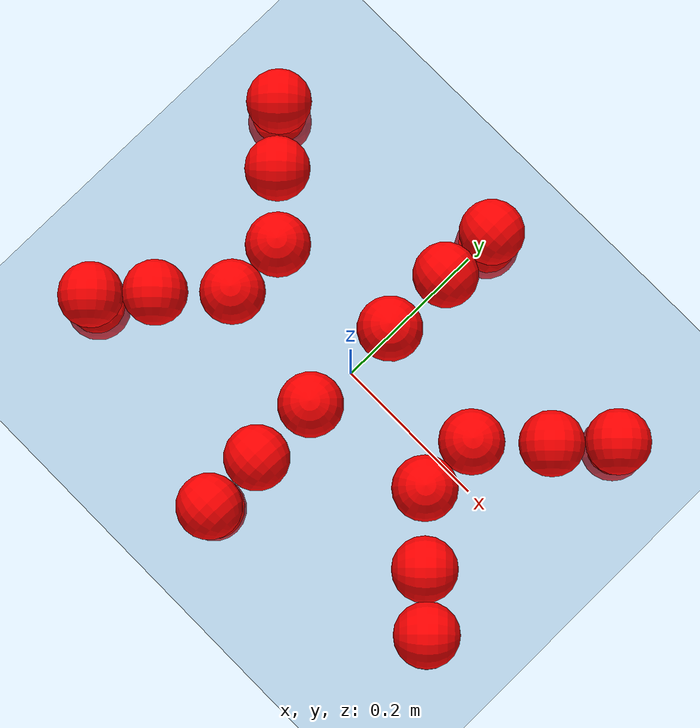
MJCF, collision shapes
<mujoco model="Golem">
  <compiler angle="radian" assetdir="assets" balanceinertia="true" inertiafromgeom="false"/>

  <option timestep="0.005" density="1.2" viscosity="2e-05"/>

  <size nkey="1"/>

  <visual>
    <quality shadowsize="8192"/>
    <map shadowclip="0.5"/>
  </visual>

  <default>
    <default class="/">
      <joint armature="0.01" damping="0.01" frictionloss="0.01"/>
      <geom contype="0" conaffinity="0" group="1" solref="-1000 -80"/>
      <site size="0.01 0.005 0.005" group="5"/>
      <general forcelimited="true" biastype="affine" gainprm="25" biasprm="0 -25 -0.5"/>
      <default class="visual">
        <geom type="mesh" group="2"/>
      </default>
      <default class="collision">
        <geom group="3"/>
      </default>
      <default class="foot">
        <geom size="0.01 0 0" condim="6" group="4" priority="1" solimp="0.015 1 0.01"/>
      </default>
      <default class="reward_collision_sphere">
        <geom group="5" rgba="1 0 0 1"/>
      </default>
    </default>
  </default>

  <asset>
    <texture type="skybox" colorspace="auto" name="//unnamed_texture_0" builtin="gradient" rgb1="0.95 0.95 0.95" rgb2="0.95 0.95 0.95" width="100" height="600"/>
    <texture type="2d" colorspace="auto" name="texplane" builtin="checker" rgb1="0.345 0.575 0.748" rgb2="0.345 0.575 0.748" markrgb="1 1 1" width="512" height="512"/>
    <material name="MatPlane" class="/" texture="texplane" texuniform="true" texrepeat="2 2" specular="0.9"/>
    <mesh name="body" class="/" file="body.stl" scale="0.001 0.001 0.001"/>
    <mesh name="coxa" class="/" file="coxa.stl" scale="0.001 0.001 0.001"/>
    <mesh name="femur" class="/" file="femur.stl" scale="0.001 0.001 0.001"/>
    <mesh name="tibia" class="/" file="tibia.stl" scale="0.001 0.001 0.001"/>
    <mesh name="tarsus" class="/" file="tarsus.stl" scale="0.001 0.001 0.001"/>
  </asset>

  <worldbody>
    <geom name="floor" class="/" size="100 100 0.125" type="plane" group="0" material="MatPlane"/>
    <light name="toplight_shadow" class="/" pos="0 0 5" dir="0.0990148 0.0990148 -0.990148" type="directional" ambient="0.04 0.04 0.04" diffuse="0.55 0.55 0.55" specular="0.12 0.12 0.12"/>
    <light name="toplight_fill" class="/" pos="0 0 5" dir="0.0990148 0.0990148 -0.990148" type="directional" castshadow="false" ambient="0.04 0.04 0.04" diffuse="0.3 0.3 0.3" specular="0.08 0.08 0.08"/>
    <body name="trunk" pos="-0.000953658 -0.000228931 -0.00259394" quat="1 -7.524e-05 -9.92731e-05 0.000200642">
      <inertial pos="0.00185047 -0.000295052 -0.000340202" quat="0.999924 -0.00610411 -0.010054 0.00366478" mass="3.62125" diaginertia="0.0112333 0.00211374 0.0239529"/>
      <joint name="//unnamed_joint_0" type="free"/>
      <geom name="//unnamed_geom_1" class="/" pos="0 0 0.076196" quat="1 0 0 0" type="mesh" rgba="0.9 0.9 0.9 1" mesh="body"/>
      <site name="imu" class="/" pos="0.132309 0.00301437 0.11578" size="0.00983189"/>
      <camera name="track" class="/" pos="0 -1.45754 0" quat="0.707107 0.707107 0 0" mode="trackcom"/>
      <camera name="ego_camera" class="/" pos="0.13393 0 0.119056" quat="-0.5 -0.5 0.5 0.5"/>
      <body name="coxa_RR" pos="-0.182007 -0.0593079 0.0751656" quat="0.382768 0.000162404 0.000279678 -0.923844">
        <inertial pos="-0.000791071 -0.00260354 -6.24888e-06" quat="0.999987 0.00353332 -0.00123519 0.00360034" mass="0.184173" diaginertia="0.0109526 0.00206799 0.0231684"/>
        <joint name="coxa_joint_RR" class="/" pos="0 0 0" axis="-0.00469902 0.00446975 -0.999979" stiffness="0.00140896" range="-3.14374 3.09438" armature="0.00904332" damping="0.00765487" frictionloss="0.00939893"/>
        <geom name="//unnamed_geom_2" class="/" type="mesh" rgba="0.2 0.2 0.2 1" mesh="coxa"/>
        <geom name="//unnamed_geom_3" class="reward_collision_sphere" size="0.0393276" pos="-0.030907 0 0"/>
        <body name="femur_RR" pos="0.0608231 0.000950934 -0.00188329" quat="0.500455 -0.499742 0.500031 0.499771">
          <inertial pos="0.00106059 0.00146205 -0.00149088" quat="1 -0.000383571 0.000489954 0.000659805" mass="0.18989" diaginertia="0.0116392 0.00207869 0.0240519"/>
          <joint name="femur_joint_RR" class="/" pos="0 0 0" axis="-0.000214279 0.000106649 -1" range="-3.15651 3.08413" armature="0.00868606" damping="0" frictionloss="0.0110178"/>
          <geom name="//unnamed_geom_4" class="/" type="mesh" rgba="0.9 0.9 0.9 1" mesh="femur"/>
          <geom name="//unnamed_geom_5" class="reward_collision_sphere" size="0.0393276"/>
          <body name="tibia_RR" pos="0.00082537 -0.076234 0.0031038" quat="3.9398e-06 1 0.00011463 -0.000569997">
            <inertial pos="-0.00270242 -0.0017727 -0.000124253" quat="0.999917 0.00579682 -0.00919511 0.00684593" mass="0.1901" diaginertia="0.0113745 0.00209388 0.024525"/>
            <joint name="tibia_joint_RR" class="/" pos="0 0 0" axis="0.00404586 0.00282539 0.999988" stiffness="0.00122109" range="-3.1932 3.1307" armature="0.00870183" damping="0" frictionloss="0.00951417"/>
            <geom name="//unnamed_geom_6" class="/" type="mesh" rgba="0.2 0.2 0.2 1" mesh="tibia"/>
            <geom name="//unnamed_geom_7" class="reward_collision_sphere" size="0.0393276"/>
            <body name="tarsus_RR" pos="0.0895155 -3.4926e-05 -0.00127096" quat="1 -0.000167167 -0.000311483 -0.000171263">
              <inertial pos="0.060109 0.003078 -0.00233542" quat="0.500074 0.499261 0.500325 0.50034" mass="0.188585" diaginertia="0.0113711 0.00206235 0.0235166"/>
              <joint name="tarsus_joint_RR" class="/" pos="0 0 0" axis="-0.00346037 -0.00239682 0.999991" range="-3.16074 3.1437" armature="0.0111901" damping="0.00374893" frictionloss="0.011137"/>
              <geom name="//unnamed_geom_8" class="/" type="mesh" rgba="0.9 0.9 0.9 1" mesh="tarsus"/>
              <geom name="foot_1" class="foot" size="0.00883628" pos="0.115386 0 0" quat="0 -0.707107 0 0.707107"/>
              <geom name="//unnamed_geom_10" class="reward_collision_sphere" size="0.0393276"/>
              <geom name="//unnamed_geom_11" class="reward_collision_sphere" size="0.0147478" pos="0.11075 0 0"/>
              <site name="foot_1" class="foot" pos="0.115386 0 0" quat="0 -0.707107 0 0.707107" size="0.00983189"/>
            </body>
          </body>
        </body>
      </body>
      <body name="coxa_RM" pos="0.000302992 -0.0966127 0.0743456" quat="0.707036 0.000396915 0.00119764 -0.707176">
        <inertial pos="-0.00270455 -8.811e-05 -0.000529918" quat="0.999988 0.00152186 0.00448647 -0.00116233" mass="0.185989" diaginertia="0.011432 0.00201038 0.0239924"/>
        <joint name="coxa_joint_RM" class="/" pos="0 0 0" axis="0.00131708 -0.000529955 -0.999999" range="-3.18844 3.13898" armature="0.00984706" damping="0.00854079" frictionloss="0.00990919"/>
        <geom name="//unnamed_geom_12" class="/" type="mesh" rgba="0.2 0.2 0.2 1" mesh="coxa"/>
        <geom name="//unnamed_geom_13" class="reward_collision_sphere" size="0.0393276" pos="-0.030907 0 0"/>
        <body name="femur_RM" pos="0.0577774 0.000541644 0.00171002" quat="0.50078 -0.500288 0.500012 0.498917">
          <inertial pos="0.000805703 -0.000627654 0.00036143" quat="0.999903 -0.0022862 -0.0135927 -0.00195602" mass="0.196166" diaginertia="0.0119652 0.00205488 0.0248471"/>
          <joint name="femur_joint_RM" class="/" pos="0 0 0" axis="-3.25989e-05 -5.08059e-05 -1" range="-3.15085 3.13857" armature="0.00946452" damping="0.00719368" frictionloss="0.00964315"/>
          <geom name="//unnamed_geom_14" class="/" type="mesh" rgba="0.9 0.9 0.9 1" mesh="femur"/>
          <geom name="//unnamed_geom_15" class="reward_collision_sphere" size="0.0393276"/>
          <body name="tibia_RM" pos="-0.00211151 -0.0791898 0.00207418" quat="-0.00023551 1 0.000456673 -0.00034126">
            <inertial pos="5.60391e-05 0.00210306 0.000299913" quat="0.999988 0.00280016 -0.00355318 -0.00175211" mass="0.195962" diaginertia="0.0120536 0.00212593 0.0252092"/>
            <joint name="tibia_joint_RM" class="/" pos="0 0 0" axis="0.00685841 0.00443192 0.999967" stiffness="0.000663037" range="-3.0934 3.09611" armature="0.0104338" damping="0.000404772" frictionloss="0.00982496"/>
            <geom name="//unnamed_geom_16" class="/" type="mesh" rgba="0.2 0.2 0.2 1" mesh="tibia"/>
            <geom name="//unnamed_geom_17" class="reward_collision_sphere" size="0.0393276"/>
            <body name="tarsus_RM" pos="0.0877541 -0.00276343 0.00216821" quat="0.999999 -0.00091355 -0.000319101 -0.000787799">
              <inertial pos="0.0624155 0.00283878 0.000347239" quat="0.499922 0.500065 0.500013 0.5" mass="0.178654" diaginertia="0.0112258 0.00196743 0.0228497"/>
              <joint name="tarsus_joint_RM" class="/" pos="0 0 0" axis="-0.00176067 0.00821691 0.999965" stiffness="0.000811768" range="-3.1513 3.15921" armature="0.0106706" damping="0.00284882" frictionloss="0.00994132"/>
              <geom name="//unnamed_geom_18" class="/" type="mesh" rgba="0.9 0.9 0.9 1" mesh="tarsus"/>
              <geom name="foot_2" class="foot" size="0.00999595" pos="0.115386 0 0" quat="0 -0.707107 0 0.707107"/>
              <geom name="//unnamed_geom_20" class="reward_collision_sphere" size="0.0393276"/>
              <geom name="//unnamed_geom_21" class="reward_collision_sphere" size="0.0147478" pos="0.11075 0 0"/>
              <site name="foot_2" class="foot" pos="0.115386 0 0" quat="0 -0.707107 0 0.707107" size="0.00983189"/>
            </body>
          </body>
        </body>
      </body>
      <body name="coxa_RF" pos="0.186005 -0.061583 0.075391" quat="0.923829 0.000197223 -0.00113315 -0.382803">
        <inertial pos="-0.00280835 -0.000968259 0.00284113" quat="0.999963 0.00107035 0.0066793 0.00523951" mass="0.194441" diaginertia="0.0116048 0.00205514 0.0238814"/>
        <joint name="coxa_joint_RF" class="/" pos="0 0 0" axis="0.00404891 -0.000936999 -0.999991" range="-3.1763 3.14189" armature="0.00840471" damping="0.0153208" frictionloss="0.0108278"/>
        <geom name="//unnamed_geom_22" class="/" type="mesh" rgba="0.2 0.2 0.2 1" mesh="coxa"/>
        <geom name="//unnamed_geom_23" class="reward_collision_sphere" size="0.0393276" pos="-0.030907 0 0"/>
        <body name="femur_RF" pos="0.0634583 0.000177213 -0.0024772" quat="0.500109 -0.4998 0.501024 0.499065">
          <inertial pos="0.00129064 -0.00116174 -0.000759624" quat="0.99999 -0.00322146 0.00183682 0.00262573" mass="0.178142" diaginertia="0.0116445 0.00200382 0.0227076"/>
          <joint name="femur_joint_RF" class="/" pos="0 0 0" axis="0.000397825 0.000107291 -1" range="-3.13165 3.08433" armature="0.00883146" damping="0" frictionloss="0.00863617"/>
          <geom name="//unnamed_geom_24" class="/" type="mesh" rgba="0.9 0.9 0.9 1" mesh="femur"/>
          <geom name="//unnamed_geom_25" class="reward_collision_sphere" size="0.0393276"/>
          <body name="tibia_RF" pos="-0.00100907 -0.0759198 0.00257512" quat="5.57096e-05 1 0.000120249 6.14859e-05">
            <inertial pos="-0.00247125 0.000877386 -0.000163915" quat="1 -6.20868e-05 2.10171e-05 2.05893e-06" mass="0.183647" diaginertia="0.0109221 0.00200054 0.0232393"/>
            <joint name="tibia_joint_RF" class="/" pos="0 0 0" axis="0.00229381 0.00921342 0.999955" range="-3.09963 3.13674" armature="0.00985379" damping="0" frictionloss="0.0107199"/>
            <geom name="//unnamed_geom_26" class="/" type="mesh" rgba="0.2 0.2 0.2 1" mesh="tibia"/>
            <geom name="//unnamed_geom_27" class="reward_collision_sphere" size="0.0393276"/>
            <body name="tarsus_RF" pos="0.0894135 0.000181473 -0.00276486" quat="0.999999 0.0010531 0.00058986 -4.60182e-05">
              <inertial pos="0.0592795 -0.00178327 -0.000427188" quat="0.492789 0.502769 0.496807 0.507509" mass="0.184764" diaginertia="0.0114066 0.00208383 0.0227903"/>
              <joint name="tarsus_joint_RF" class="/" pos="0 0 0" axis="-0.00681584 -0.00621577 0.999957" range="-3.12532 3.13202" armature="0.00854992" damping="0" frictionloss="0.00846559"/>
              <geom name="//unnamed_geom_28" class="/" type="mesh" rgba="0.9 0.9 0.9 1" mesh="tarsus"/>
              <geom name="foot_3" class="foot" size="0.0098905" pos="0.115386 0 0" quat="0 -0.707107 0 0.707107"/>
              <geom name="//unnamed_geom_30" class="reward_collision_sphere" size="0.0393276"/>
              <geom name="//unnamed_geom_31" class="reward_collision_sphere" size="0.0147478" pos="0.11075 0 0"/>
              <site name="foot_3" class="foot" pos="0.115386 0 0" quat="0 -0.707107 0 0.707107" size="0.00983189"/>
            </body>
          </body>
        </body>
      </body>
      <body name="coxa_LR" pos="-0.185017 0.0623171 0.0736938" quat="0.382385 -3.22461e-05 -3.47168e-05 0.924003">
        <inertial pos="0.00051367 -0.000572757 0.000743686" quat="0.999913 0.00848666 -0.00974809 -0.00280783" mass="0.189601" diaginertia="0.0116488 0.00212243 0.0239086"/>
        <joint name="coxa_joint_LR" class="/" pos="0 0 0" axis="-0.00701912 0.00773316 -0.999945" stiffness="0.00865129" range="-3.14992 3.16015" armature="0.0112044" damping="0.0113512" frictionloss="0.00988837"/>
        <geom name="//unnamed_geom_32" class="/" type="mesh" rgba="0.2 0.2 0.2 1" mesh="coxa"/>
        <geom name="//unnamed_geom_33" class="reward_collision_sphere" size="0.0393276" pos="-0.030907 0 0"/>
        <body name="femur_LR" pos="0.0608406 0.00149767 0.00183851" quat="0.500515 -0.500105 0.499061 0.500318">
          <inertial pos="-0.00275935 -0.00269259 0.00256015" quat="1 0.000552561 -0.00032484 -0.000354392" mass="0.200043" diaginertia="0.0120214 0.00216507 0.0243866"/>
          <joint name="femur_joint_LR" class="/" pos="0 0 0" axis="0.0111995 -0.00853131 0.999901" range="-3.18859 3.08715" armature="0.0109001" damping="0" frictionloss="0.00847107"/>
          <geom name="//unnamed_geom_34" class="/" type="mesh" rgba="0.9 0.9 0.9 1" mesh="femur"/>
          <geom name="//unnamed_geom_35" class="reward_collision_sphere" size="0.0393276"/>
          <body name="tibia_LR" pos="0.00234752 -0.0824204 -0.000992067" quat="0.000147919 1 -0.000171608 0.000221851">
            <inertial pos="-0.000388077 -0.00267854 0.000227928" quat="0.999976 0.00124569 -0.00113983 -0.00671604" mass="0.178232" diaginertia="0.0109789 0.00203269 0.0224374"/>
            <joint name="tibia_joint_LR" class="/" pos="0 0 0" axis="-0.0126074 -0.00469456 -0.99991" range="-3.14345 3.08326" armature="0.009887" damping="0" frictionloss="0.0110031"/>
            <geom name="//unnamed_geom_36" class="/" type="mesh" rgba="0.2 0.2 0.2 1" mesh="tibia"/>
            <geom name="//unnamed_geom_37" class="reward_collision_sphere" size="0.0393276"/>
            <body name="tarsus_LR" pos="0.0935972 -0.00172215 -0.0018044" quat="0.999999 -0.000664599 0.000714123 0.000579686">
              <inertial pos="0.0611075 0.00144215 -0.00252506" quat="0.500216 0.500148 0.499608 0.500027" mass="0.184937" diaginertia="0.0116708 0.00210337 0.0236575"/>
              <joint name="tarsus_joint_LR" class="/" pos="0 0 0" axis="0.00460632 -0.00476299 -0.999978" range="-3.19449 3.15557" armature="0.00843298" damping="0.0292867" frictionloss="0.00973185"/>
              <geom name="//unnamed_geom_38" class="/" type="mesh" rgba="0.9 0.9 0.9 1" mesh="tarsus"/>
              <geom name="foot_4" class="foot" size="0.00967262" pos="0.115386 0 0" quat="0.707107 0 -0.707107 0"/>
              <geom name="//unnamed_geom_40" class="reward_collision_sphere" size="0.0393276"/>
              <geom name="//unnamed_geom_41" class="reward_collision_sphere" size="0.0147478" pos="0.11075 0 0"/>
              <site name="foot_4" class="foot" pos="0.115386 0 0" quat="0.707107 0 -0.707107 0" size="0.00983189"/>
            </body>
          </body>
        </body>
      </body>
      <body name="coxa_LM" pos="0.00213487 0.0943392 0.0796003" quat="0.707104 -3.91205e-05 1.75571e-05 0.70711">
        <inertial pos="0.0024342 4.05352e-05 0.000927652" quat="0.999974 0.00297167 -0.00552762 0.00364911" mass="0.184163" diaginertia="0.0120473 0.0020394 0.0238409"/>
        <joint name="coxa_joint_LM" class="/" pos="0 0 0" axis="-0.00306313 -0.0122913 -0.99992" range="-3.12077 3.18805" armature="0.00981369" damping="0.00250006" frictionloss="0.00959644"/>
        <geom name="//unnamed_geom_42" class="/" type="mesh" rgba="0.2 0.2 0.2 1" mesh="coxa"/>
        <geom name="//unnamed_geom_43" class="reward_collision_sphere" size="0.0393276" pos="-0.030907 0 0"/>
        <body name="femur_LM" pos="0.061094 -0.000593797 -0.00088693" quat="0.500476 -0.498987 0.500878 0.499657">
          <inertial pos="0.00258559 0.00108081 -0.00239056" quat="0.999996 -0.000128738 -0.00270159 -0.000459787" mass="0.203081" diaginertia="0.0121372 0.00212914 0.0255544"/>
          <joint name="femur_joint_LM" class="/" pos="0 0 0" axis="-0.00972654 0.00696283 0.999928" stiffness="0.0108624" range="-3.1948 3.08442" armature="0.00982355" damping="0.00753149" frictionloss="0.0110013"/>
          <geom name="//unnamed_geom_44" class="/" type="mesh" rgba="0.9 0.9 0.9 1" mesh="femur"/>
          <geom name="//unnamed_geom_45" class="reward_collision_sphere" size="0.0393276"/>
          <body name="tibia_LM" pos="0.00114293 -0.0754631 -0.00182667" quat="4.60027e-05 1 5.63051e-05 -0.000124602">
            <inertial pos="0.00252525 -0.00015582 0.000472819" quat="0.999999 -0.000723818 -0.000632491 -0.00100425" mass="0.196102" diaginertia="0.0117994 0.00203915 0.0250659"/>
            <joint name="tibia_joint_LM" class="/" pos="0 0 0" axis="0.011205 1.81192e-06 -0.999937" range="-3.14458 3.13861" armature="0.00845606" damping="0" frictionloss="0.00960515"/>
            <geom name="//unnamed_geom_46" class="/" type="mesh" rgba="0.2 0.2 0.2 1" mesh="tibia"/>
            <geom name="//unnamed_geom_47" class="reward_collision_sphere" size="0.0393276"/>
            <body name="tarsus_LM" pos="0.0926872 -0.000593824 -0.00101901" quat="1 0.000114237 0.00014593 -0.000152333">
              <inertial pos="0.0624415 0.000237671 0.00271276" quat="0.504649 0.500075 0.499693 0.495542" mass="0.188019" diaginertia="0.011261 0.00212927 0.023872"/>
              <joint name="tarsus_joint_LM" class="/" pos="0 0 0" axis="-0.00753426 -0.000310301 -0.999972" range="-3.13818 3.14494" armature="0.010098" damping="0.0120615" frictionloss="0.00975693"/>
              <geom name="//unnamed_geom_48" class="/" type="mesh" rgba="0.9 0.9 0.9 1" mesh="tarsus"/>
              <geom name="foot_5" class="foot" size="0.00902966" pos="0.115386 0 0" quat="0.707107 0 -0.707107 0"/>
              <geom name="//unnamed_geom_50" class="reward_collision_sphere" size="0.0393276"/>
              <geom name="//unnamed_geom_51" class="reward_collision_sphere" size="0.0147478" pos="0.11075 0 0"/>
              <site name="foot_5" class="foot" pos="0.115386 0 0" quat="0.707107 0 -0.707107 0" size="0.00983189"/>
            </body>
          </body>
        </body>
      </body>
      <body name="coxa_LF" pos="0.185967 0.0593266 0.0757006" quat="0.924037 0.000114041 -0.00127833 0.382302">
        <inertial pos="-5.00312e-05 0.000308156 0.00280468" quat="0.999996 0.00177115 0.000639215 -0.00208638" mass="0.188231" diaginertia="0.0118238 0.00198657 0.0238216"/>
        <joint name="coxa_joint_LF" class="/" pos="0 0 0" axis="-0.00399558 0.0154199 -0.999873" range="-3.16224 3.1202" armature="0.00943098" damping="0.0196244" frictionloss="0.00848131"/>
        <geom name="//unnamed_geom_52" class="/" type="mesh" rgba="0.2 0.2 0.2 1" mesh="coxa"/>
        <geom name="//unnamed_geom_53" class="reward_collision_sphere" size="0.0393276" pos="-0.030907 0 0"/>
        <body name="femur_LF" pos="0.0629856 -0.00130693 -0.000513861" quat="0.499922 -0.499768 0.500148 0.500162">
          <inertial pos="-0.000263667 4.20104e-05 0.00275972" quat="0.99993 -0.00894123 -0.00207773 -0.00751082" mass="0.194824" diaginertia="0.011202 0.00207031 0.0237904"/>
          <joint name="femur_joint_LF" class="/" pos="0 0 0" axis="-0.0037521 -0.014116 0.999893" stiffness="0.00273271" range="-3.15995 3.13997" armature="0.00970304" damping="0.00835908" frictionloss="0.0111994"/>
          <geom name="//unnamed_geom_54" class="/" type="mesh" rgba="0.9 0.9 0.9 1" mesh="femur"/>
          <geom name="//unnamed_geom_55" class="reward_collision_sphere" size="0.0393276"/>
          <body name="tibia_LF" pos="0.000393757 -0.0777916 0.00273178" quat="0.00110022 0.999999 -0.00063932 -0.000127288">
            <inertial pos="-0.000925322 0.0002891 -0.00259168" quat="0.999911 -0.00847589 0.00973185 0.00343699" mass="0.19897" diaginertia="0.0120193 0.00205601 0.0239002"/>
            <joint name="tibia_joint_LF" class="/" pos="0 0 0" axis="-0.000202481 6.05393e-06 -1" range="-3.09522 3.15864" armature="0.0102104" damping="0.0163173" frictionloss="0.00980726"/>
            <geom name="//unnamed_geom_56" class="/" type="mesh" rgba="0.2 0.2 0.2 1" mesh="tibia"/>
            <geom name="//unnamed_geom_57" class="reward_collision_sphere" size="0.0393276"/>
            <body name="tarsus_LF" pos="0.0930942 0.0031738 -0.00134918" quat="1 0.000503372 0.00041842 -0.000132475">
              <inertial pos="0.0596239 0.000266374 0.000572825" quat="0.500345 0.500354 0.499749 0.499552" mass="0.18021" diaginertia="0.0110545 0.00194517 0.0238757"/>
              <joint name="tarsus_joint_LF" class="/" pos="0 0 0" axis="-0.0125305 -0.00795082 -0.99989" range="-3.13592 3.08405" armature="0.0112971" damping="0.0169505" frictionloss="0.0109953"/>
              <geom name="//unnamed_geom_58" class="/" type="mesh" rgba="0.9 0.9 0.9 1" mesh="tarsus"/>
              <geom name="foot_6" class="foot" size="0.00956413" pos="0.115386 0 0" quat="0.707107 0 -0.707107 0"/>
              <geom name="//unnamed_geom_60" class="reward_collision_sphere" size="0.0393276"/>
              <geom name="//unnamed_geom_61" class="reward_collision_sphere" size="0.0147478" pos="0.11075 0 0"/>
              <site name="foot_6" class="foot" pos="0.115386 0 0" quat="0.707107 0 -0.707107 0" size="0.00983189"/>
            </body>
          </body>
        </body>
      </body>
    </body>
  </worldbody>

  <contact>
    <pair class="/" geom1="floor" geom2="foot_1" name="//unnamed_contact_0"/>
    <pair class="/" geom1="floor" geom2="foot_2" name="//unnamed_contact_1"/>
    <pair class="/" geom1="floor" geom2="foot_3" name="//unnamed_contact_2"/>
    <pair class="/" geom1="floor" geom2="foot_4" name="//unnamed_contact_3"/>
    <pair class="/" geom1="floor" geom2="foot_5" name="//unnamed_contact_4"/>
    <pair class="/" geom1="floor" geom2="foot_6" name="//unnamed_contact_5"/>
  </contact>

  <actuator>
    <general name="coxa_joint_RR" class="/" joint="coxa_joint_RR" forcerange="-7.73285 7.73285" gainprm="23.2391" biasprm="0 -23.2391 -0.505497"/>
    <general name="femur_joint_RR" class="/" joint="femur_joint_RR" forcerange="-7.86357 7.86357" gainprm="23.2391" biasprm="0 -23.2391 -0.505497"/>
    <general name="tibia_joint_RR" class="/" joint="tibia_joint_RR" forcerange="-6.46993 6.46993" gainprm="23.2391" biasprm="0 -23.2391 -0.505497"/>
    <general name="tarsus_joint_RR" class="/" joint="tarsus_joint_RR" forcerange="-6.44017 6.44017" gainprm="23.2391" biasprm="0 -23.2391 -0.505497"/>
    <general name="coxa_joint_RM" class="/" joint="coxa_joint_RM" forcerange="-6.44165 6.44165" gainprm="23.2391" biasprm="0 -23.2391 -0.505497"/>
    <general name="femur_joint_RM" class="/" joint="femur_joint_RM" forcerange="-6.88669 6.88669" gainprm="23.2391" biasprm="0 -23.2391 -0.505497"/>
    <general name="tibia_joint_RM" class="/" joint="tibia_joint_RM" forcerange="-7.04529 7.04529" gainprm="23.2391" biasprm="0 -23.2391 -0.505497"/>
    <general name="tarsus_joint_RM" class="/" joint="tarsus_joint_RM" forcerange="-7.15433 7.15433" gainprm="23.2391" biasprm="0 -23.2391 -0.505497"/>
    <general name="coxa_joint_RF" class="/" joint="coxa_joint_RF" forcerange="-7.00972 7.00972" gainprm="23.2391" biasprm="0 -23.2391 -0.505497"/>
    <general name="femur_joint_RF" class="/" joint="femur_joint_RF" forcerange="-7.79302 7.79302" gainprm="23.2391" biasprm="0 -23.2391 -0.505497"/>
    <general name="tibia_joint_RF" class="/" joint="tibia_joint_RF" forcerange="-7.90176 7.90176" gainprm="23.2391" biasprm="0 -23.2391 -0.505497"/>
    <general name="tarsus_joint_RF" class="/" joint="tarsus_joint_RF" forcerange="-7.92318 7.92318" gainprm="23.2391" biasprm="0 -23.2391 -0.505497"/>
    <general name="coxa_joint_LR" class="/" joint="coxa_joint_LR" forcerange="-7.12114 7.12114" gainprm="23.2391" biasprm="0 -23.2391 -0.505497"/>
    <general name="femur_joint_LR" class="/" joint="femur_joint_LR" forcerange="-7.31741 7.31741" gainprm="23.2391" biasprm="0 -23.2391 -0.505497"/>
    <general name="tibia_joint_LR" class="/" joint="tibia_joint_LR" forcerange="-7.82628 7.82628" gainprm="23.2391" biasprm="0 -23.2391 -0.505497"/>
    <general name="tarsus_joint_LR" class="/" joint="tarsus_joint_LR" forcerange="-7.90041 7.90041" gainprm="23.2391" biasprm="0 -23.2391 -0.505497"/>
    <general name="coxa_joint_LM" class="/" joint="coxa_joint_LM" forcerange="-7.17848 7.17848" gainprm="23.2391" biasprm="0 -23.2391 -0.505497"/>
    <general name="femur_joint_LM" class="/" joint="femur_joint_LM" forcerange="-7.39101 7.39101" gainprm="23.2391" biasprm="0 -23.2391 -0.505497"/>
    <general name="tibia_joint_LM" class="/" joint="tibia_joint_LM" forcerange="-7.14172 7.14172" gainprm="23.2391" biasprm="0 -23.2391 -0.505497"/>
    <general name="tarsus_joint_LM" class="/" joint="tarsus_joint_LM" forcerange="-7.05154 7.05154" gainprm="23.2391" biasprm="0 -23.2391 -0.505497"/>
    <general name="coxa_joint_LF" class="/" joint="coxa_joint_LF" forcerange="-7.25989 7.25989" gainprm="23.2391" biasprm="0 -23.2391 -0.505497"/>
    <general name="femur_joint_LF" class="/" joint="femur_joint_LF" forcerange="-7.92551 7.92551" gainprm="23.2391" biasprm="0 -23.2391 -0.505497"/>
    <general name="tibia_joint_LF" class="/" joint="tibia_joint_LF" forcerange="-7.92092 7.92092" gainprm="23.2391" biasprm="0 -23.2391 -0.505497"/>
    <general name="tarsus_joint_LF" class="/" joint="tarsus_joint_LF" forcerange="-6.98841 6.98841" gainprm="23.2391" biasprm="0 -23.2391 -0.505497"/>
  </actuator>

  <sensor>
    <gyro site="imu" name="imu_angular_velocity"/>
    <velocimeter site="imu" name="imu_linear_velocity"/>
    <framelinvel objtype="site" objname="foot_1" name="foot_1_global_linear_velocity"/>
    <framelinvel objtype="site" objname="foot_2" name="foot_2_global_linear_velocity"/>
    <framelinvel objtype="site" objname="foot_3" name="foot_3_global_linear_velocity"/>
    <framelinvel objtype="site" objname="foot_4" name="foot_4_global_linear_velocity"/>
    <framelinvel objtype="site" objname="foot_5" name="foot_5_global_linear_velocity"/>
    <framelinvel objtype="site" objname="foot_6" name="foot_6_global_linear_velocity"/>
  </sensor>

  <keyframe>
    <key name="home" qpos="0 0 0.1457 1 0 0 0 0 0 0 0 0 0 0 0 0 0 0 0 0 0 0 0 0 0 0 0 0 0 0 0"/>
  </keyframe>
</mujoco>
